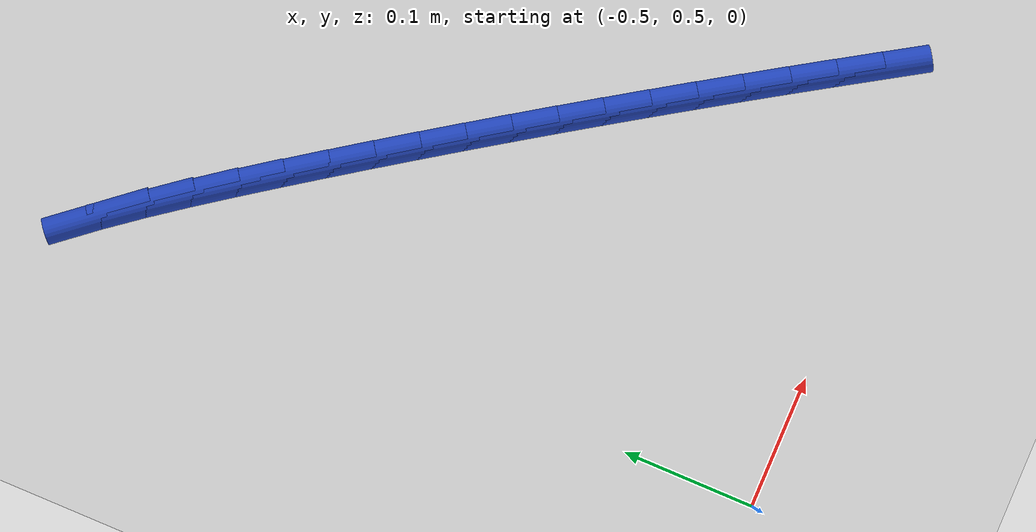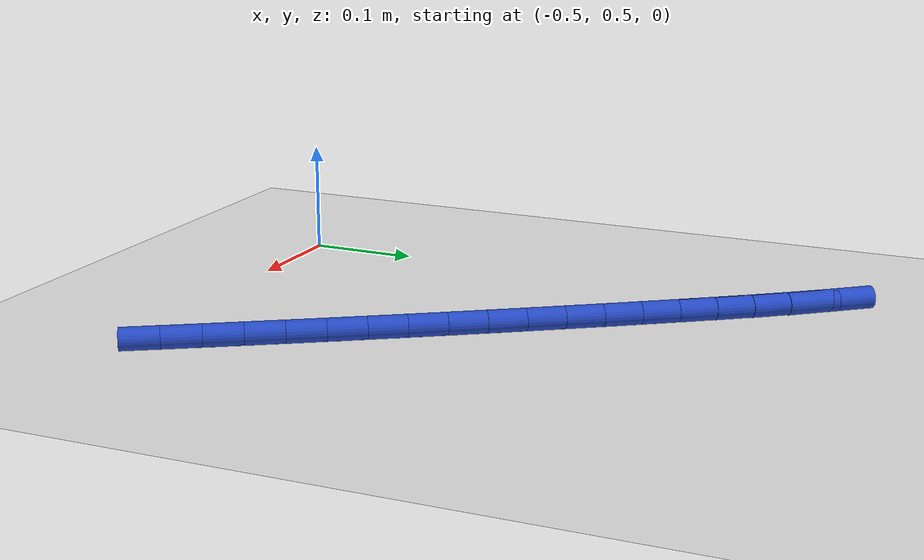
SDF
<sdf version="1.6">
 <world name="default">
  <model name="ground_plane">
   <static>1</static>
   <link name="link">
    <collision name="collision">
     <geometry><plane><normal>0 0 1</normal><size>100 100</size></plane></geometry>
     <surface><friction><ode><mu>100</mu><mu2>50</mu2></ode></friction></surface>
    </collision>
    <visual name="visual">
     <cast_shadows>0</cast_shadows>
     <geometry><plane><normal>0 0 1</normal><size>100 100</size></plane></geometry>
     <material>
      <script><uri>file://media/materials/scripts/gazebo.material</uri><name>Gazebo/WhiteGlow</name></script>
     </material>
    </visual>
   </link>
  </model>
  <model name="line">
   <link name="link_17">
    <pose>-0.17227255837316457 0.5412823341240962 0.01 0 1.57 -1.0181166725889825</pose>
    <collision name="collision">
     <geometry><cylinder><radius>0.01</radius><length>0.08</length></cylinder></geometry>
    </collision>
    <visual name="visual">
     <material>
      <script><name>Gazebo/Blue</name><uri>file://media/materials/scripts/gazebo.material</uri></script>
     </material>
     <geometry><cylinder><radius>0.01</radius><length>0.08</length></cylinder></geometry>
    </visual>
   </link>
   <link name="link_18">
    <pose>-0.1902278542120203 0.5703928199339524 0.01 0 1.57 -1.0143237346631302</pose>
    <collision name="collision">
     <geometry><cylinder><radius>0.01</radius><length>0.08</length></cylinder></geometry>
    </collision>
    <visual name="visual">
     <material>
      <script><name>Gazebo/Blue</name><uri>file://media/materials/scripts/gazebo.material</uri></script>
     </material>
     <geometry><cylinder><radius>0.01</radius><length>0.08</length></cylinder></geometry>
    </visual>
   </link>
   <link name="link_19">
    <pose>-0.2082848515343815 0.5994211946010174 0.01 0 1.57 -1.0104597021589745</pose>
    <collision name="collision">
     <geometry><cylinder><radius>0.01</radius><length>0.08</length></cylinder></geometry>
    </collision>
    <visual name="visual">
     <material>
      <script><name>Gazebo/Blue</name><uri>file://media/materials/scripts/gazebo.material</uri></script>
     </material>
     <geometry><cylinder><radius>0.01</radius><length>0.08</length></cylinder></geometry>
    </visual>
   </link>
   <link name="link_20">
    <pose>-0.22643991498239224 0.6283573214414756 0.01 0 1.57 -1.0065208890052546</pose>
    <collision name="collision">
     <geometry><cylinder><radius>0.01</radius><length>0.08</length></cylinder></geometry>
    </collision>
    <visual name="visual">
     <material>
      <script><name>Gazebo/Blue</name><uri>file://media/materials/scripts/gazebo.material</uri></script>
     </material>
     <geometry><cylinder><radius>0.01</radius><length>0.08</length></cylinder></geometry>
    </visual>
   </link>
   <link name="link_21">
    <pose>-0.24468941120227933 0.6571910629377049 0.01 0 1.57 -1.0025035332740249</pose>
    <collision name="collision">
     <geometry><cylinder><radius>0.01</radius><length>0.08</length></cylinder></geometry>
    </collision>
    <visual name="visual">
     <material>
      <script><name>Gazebo/Blue</name><uri>file://media/materials/scripts/gazebo.material</uri></script>
     </material>
     <geometry><cylinder><radius>0.01</radius><length>0.08</length></cylinder></geometry>
    </visual>
   </link>
   <link name="link_22">
    <pose>-0.26302970684026933 0.685912281572083 0.01 0 1.57 -0.9984037235790574</pose>
    <collision name="collision">
     <geometry><cylinder><radius>0.01</radius><length>0.08</length></cylinder></geometry>
    </collision>
    <visual name="visual">
     <material>
      <script><name>Gazebo/Blue</name><uri>file://media/materials/scripts/gazebo.material</uri></script>
     </material>
     <geometry><cylinder><radius>0.01</radius><length>0.08</length></cylinder></geometry>
    </visual>
   </link>
   <link name="link_23">
    <pose>-0.28145716854258873 0.7145108398269874 0.01 0 1.57 -0.9942173875216094</pose>
    <collision name="collision">
     <geometry><cylinder><radius>0.01</radius><length>0.08</length></cylinder></geometry>
    </collision>
    <visual name="visual">
     <material>
      <script><name>Gazebo/Blue</name><uri>file://media/materials/scripts/gazebo.material</uri></script>
     </material>
     <geometry><cylinder><radius>0.01</radius><length>0.08</length></cylinder></geometry>
    </visual>
   </link>
   <link name="link_24">
    <pose>-0.29996816295546413 0.7429766001847952 0.01 0 1.57 -0.9899402794514747</pose>
    <collision name="collision">
     <geometry><cylinder><radius>0.01</radius><length>0.08</length></cylinder></geometry>
    </collision>
    <visual name="visual">
     <material>
      <script><name>Gazebo/Blue</name><uri>file://media/materials/scripts/gazebo.material</uri></script>
     </material>
     <geometry><cylinder><radius>0.01</radius><length>0.08</length></cylinder></geometry>
    </visual>
   </link>
   <link name="link_25">
    <pose>-0.31855905672512225 0.7712994251278844 0.01 0 1.57 -0.9855679674756073</pose>
    <collision name="collision">
     <geometry><cylinder><radius>0.01</radius><length>0.08</length></cylinder></geometry>
    </collision>
    <visual name="visual">
     <material>
      <script><name>Gazebo/Blue</name><uri>file://media/materials/scripts/gazebo.material</uri></script>
     </material>
     <geometry><cylinder><radius>0.01</radius><length>0.08</length></cylinder></geometry>
    </visual>
   </link>
   <link name="link_26">
    <pose>-0.3372262164977896 0.7994691771386324 0.01 0 1.57 -0.9810958196419883</pose>
    <collision name="collision">
     <geometry><cylinder><radius>0.01</radius><length>0.08</length></cylinder></geometry>
    </collision>
    <visual name="visual">
     <material>
      <script><name>Gazebo/Blue</name><uri>file://media/materials/scripts/gazebo.material</uri></script>
     </material>
     <geometry><cylinder><radius>0.01</radius><length>0.08</length></cylinder></geometry>
    </visual>
   </link>
   <link name="link_27">
    <pose>-0.3559660089196929 0.8274757186994169 0.01 0 1.57 -0.9765189892205798</pose>
    <collision name="collision">
     <geometry><cylinder><radius>0.01</radius><length>0.08</length></cylinder></geometry>
    </collision>
    <visual name="visual">
     <material>
      <script><name>Gazebo/Blue</name><uri>file://media/materials/scripts/gazebo.material</uri></script>
     </material>
     <geometry><cylinder><radius>0.01</radius><length>0.08</length></cylinder></geometry>
    </visual>
   </link>
   <link name="link_28">
    <pose>-0.37477480063705837 0.8553089122926152 0.01 0 1.57 -0.9718323989973517</pose>
    <collision name="collision">
     <geometry><cylinder><radius>0.01</radius><length>0.08</length></cylinder></geometry>
    </collision>
    <visual name="visual">
     <material>
      <script><name>Gazebo/Blue</name><uri>file://media/materials/scripts/gazebo.material</uri></script>
     </material>
     <geometry><cylinder><radius>0.01</radius><length>0.08</length></cylinder></geometry>
    </visual>
   </link>
   <link name="link_29">
    <pose>-0.3936489582961129 0.8829586204006049 0.01 0 1.57 -0.9670307244905849</pose>
    <collision name="collision">
     <geometry><cylinder><radius>0.01</radius><length>0.08</length></cylinder></geometry>
    </collision>
    <visual name="visual">
     <material>
      <script><name>Gazebo/Blue</name><uri>file://media/materials/scripts/gazebo.material</uri></script>
     </material>
     <geometry><cylinder><radius>0.01</radius><length>0.08</length></cylinder></geometry>
    </visual>
   </link>
   <link name="link_30">
    <pose>-0.4125848485430831 0.9104147055057635 0.01 0 1.57 -0.9617721216435963</pose>
    <collision name="collision">
     <geometry><cylinder><radius>0.01</radius><length>0.08</length></cylinder></geometry>
    </collision>
    <visual name="visual">
     <material>
      <script><name>Gazebo/Blue</name><uri>file://media/materials/scripts/gazebo.material</uri></script>
     </material>
     <geometry><cylinder><radius>0.01</radius><length>0.08</length></cylinder></geometry>
    </visual>
   </link>
   <link name="link_31">
    <pose>-0.4315902551562774 0.9376638741381212 0.01 0 1.57 -0.9523835846050901</pose>
    <collision name="collision">
     <geometry><cylinder><radius>0.01</radius><length>0.08</length></cylinder></geometry>
    </collision>
    <visual name="visual">
     <material>
      <script><name>Gazebo/Blue</name><uri>file://media/materials/scripts/gazebo.material</uri></script>
     </material>
     <geometry><cylinder><radius>0.01</radius><length>0.08</length></cylinder></geometry>
    </visual>
   </link>
   <link name="link_32">
    <pose>-0.4507973193872655 0.9646584576223689 0.01 0 1.57 -0.9366248579137219</pose>
    <collision name="collision">
     <geometry><cylinder><radius>0.01</radius><length>0.08</length></cylinder></geometry>
    </collision>
    <visual name="visual">
     <material>
      <script><name>Gazebo/Blue</name><uri>file://media/materials/scripts/gazebo.material</uri></script>
     </material>
     <geometry><cylinder><radius>0.01</radius><length>0.08</length></cylinder></geometry>
    </visual>
   </link>
   <link name="link_33">
    <pose>-0.47041461107264115 0.9913296607016172 0.01 0 1.57 -0.9145557799903085</pose>
    <collision name="collision">
     <geometry><cylinder><radius>0.01</radius><length>0.08</length></cylinder></geometry>
    </collision>
    <visual name="visual">
     <material>
      <script><name>Gazebo/Blue</name><uri>file://media/materials/scripts/gazebo.material</uri></script>
     </material>
     <geometry><cylinder><radius>0.01</radius><length>0.08</length></cylinder></geometry>
    </visual>
   </link>
   <link name="link_34">
    <pose>-0.49065181344204173 1.0176083803520735 0.01 0 1.57 -0.8863747822637508</pose>
    <collision name="collision">
     <geometry><cylinder><radius>0.01</radius><length>0.08</length></cylinder></geometry>
    </collision>
    <visual name="visual">
     <material>
      <script><name>Gazebo/Blue</name><uri>file://media/materials/scripts/gazebo.material</uri></script>
     </material>
     <geometry><cylinder><radius>0.01</radius><length>0.08</length></cylinder></geometry>
    </visual>
   </link>
  </model>
 </world>
</sdf>
